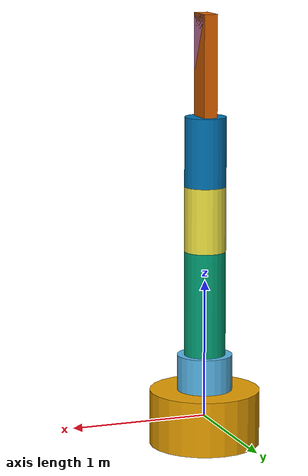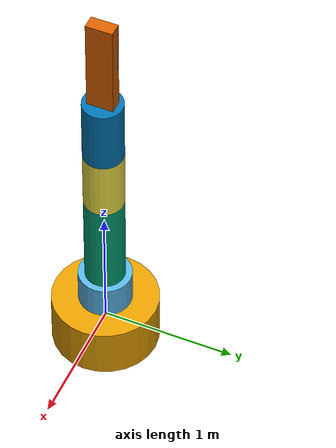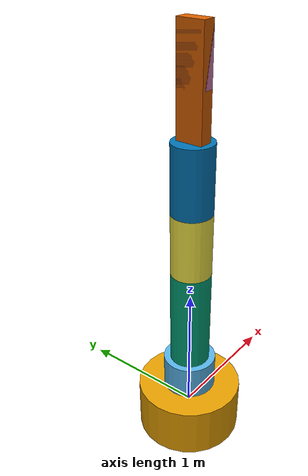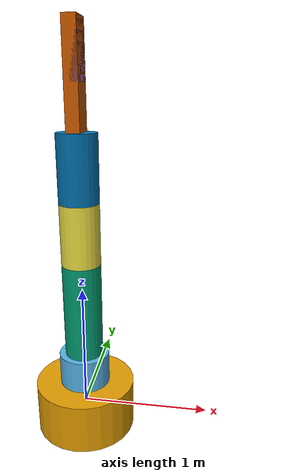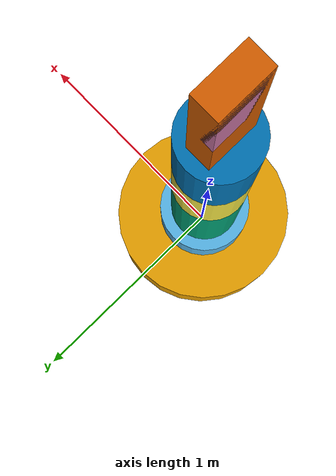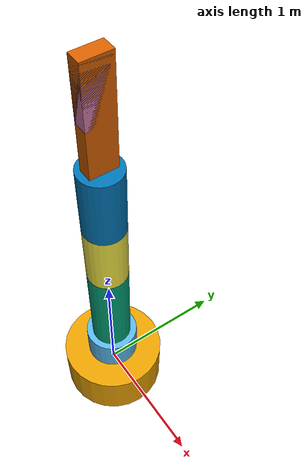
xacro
<?xml version="1.0" ?>
<!--building robot arm based on tutorial of "the construct"-->
<robot name="arm" xmlns:xacro="http://www.ros.org/wiki/xacro">
    <!-- BGN -include -->
    <xacro:include filename="$(find arm_description)/urdf/template_links_joints.xacro"/>
    <!-- END -include -->

    <!-- BGN - Robot description -->
    <xacro:link_m_cylinder name="link_base"
        origin_rpy="0 0 0" origin_xyz="0 0 0"
        radius="0.4" length="0.4"
        mass="1000" ixx="1" ixy="0" ixz="0"
        iyy="1" iyz="0"
        izz="1"/>

    <xacro:joint_m name="joint_base_01" type="revolute"
        axis_xyz="0 0 1" origin_rpy="0 0 0" origin_xyz="0 0 0.2"
        parent="link_base" child="link_01"
        limit_force="300" limit_pos_lower="-3.14" limit_pos_upper="3.14" limit_velocity="1"/>

    <xacro:link_m_cylinder name="link_01"
        origin_rpy="0 0 0" origin_xyz="0 0 0.13"
        radius="0.2" length="0.26"
        mass="0.01" ixx="0.0" ixy="0" ixz="0"
        iyy="0.0" iyz="0"
        izz="0.0"/>

    <xacro:joint_m name="joint_01_02" type="revolute"
        axis_xyz="0 1 0" origin_rpy="0 0 0" origin_xyz="0 0 0.26"
        parent="link_01" child="link_02"
        limit_force="300" limit_pos_lower="-3.14" limit_pos_upper="3.14" limit_velocity="1"/>

    <xacro:link_m_cylinder name="link_02"
        origin_rpy="0 0 0" origin_xyz="0 0 0.38"
        radius="0.15" length="0.76"
        mass="0.01" ixx="0" ixy="0" ixz="0"
        iyy="0" iyz="0"
        izz="0"/>

    <xacro:joint_m name="joint_02_03" type="revolute"
        axis_xyz="0 1 0" origin_rpy="0 0 0" origin_xyz="0 0 0.76"
        parent="link_02" child="link_03"
        limit_force="300" limit_pos_lower="-3.14" limit_pos_upper="3.14" limit_velocity="1"/>

    <xacro:link_m_cylinder name="link_03"
        origin_rpy="0 0 0" origin_xyz="0 0 0.235"
        radius="0.15" length="0.47"
        mass="0.01" ixx="0" ixy="0" ixz="0"
        iyy="0" iyz="0"
        izz="0"/>

    <xacro:joint_m name="joint_03_04" type="revolute"
        axis_xyz="0 1 0" origin_rpy="0 0 0" origin_xyz="0 0 0.47"
        parent="link_03" child="link_04"
        limit_force="300" limit_pos_lower="-3.14" limit_pos_upper="3.14" limit_velocity="1"/>

    <xacro:link_m_cylinder name="link_04"
        origin_rpy="0 0 0" origin_xyz="0 0 0.25"
        radius="0.15" length="0.5"
        mass="0.01" ixx="0" ixy="0" ixz="0"
        iyy="0" iyz="0"
        izz="0"/>

    <xacro:joint_m name="joint_04_05" type="revolute"
        axis_xyz="0 0 1" origin_rpy="0 0 0" origin_xyz="0 0 0.5"
        parent="link_04" child="link_05"
        limit_force="300" limit_pos_lower="-3.14" limit_pos_upper="3.14" limit_velocity="1"/>

    <xacro:link_m_box name="link_05"
        origin_rpy="0 0 0" origin_xyz="0 0 0.365"
        size="0.1 0.2 0.73"
        mass="0.01" ixx="0.0" ixy="0" ixz="0"
        iyy="0" iyz="0"
        izz="0"/>

    <xacro:joint_m name="joint_05_06" type="revolute"
        axis_xyz="0 1 0" origin_rpy="0 0 0" origin_xyz="0 0 0.33"
        parent="link_05" child="link_06_finger"
        limit_force="300" limit_pos_lower="-3.14" limit_pos_upper="3.14" limit_velocity="1"/>

    <xacro:link_m_box name="link_06_finger"
        origin_rpy="0 0 0" origin_xyz="0 0 0.2"
        size="0.1 0.2 0.4"
        mass="0.01" ixx="0." ixy="0" ixz="0"
        iyy="0" iyz="0"
        izz="0"/>

    <!-- END - Robot description -->

    <!-- BGN - controller description-->
    <gazebo>
        <plugin name="gazebo_ros_control" filename="libgazebo_ros_control.so">
        </plugin>
    </gazebo>
    <!-- END - controller description-->
</robot>

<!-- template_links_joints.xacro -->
<robot xmlns:xacro="http://www.ros.org/wiki/xacro">
    <xacro:macro name="link_m_cylinder" params="name origin_xyz origin_rpy radius length mass ixx ixy ixz iyy iyz izz">
        <link name="${name}">
            <inertial>
                <mass value="${mass}"/>
                <origin rpy="${origin_rpy}" xyz="${origin_xyz}"/>
                <inertia ixx="${ixx}" ixy="${ixy}" ixz="${ixz}" iyy="${iyy}" iyz="${iyz}" izz="${izz}"/>
            </inertial>
            <collision>
                <origin rpy="${origin_rpy}" xyz="${origin_xyz}"/>
                <geometry>
                    <cylinder radius="${radius}" length="${length}"/>
                </geometry>
            </collision>
            <visual>
                <origin rpy="${origin_rpy}" xyz="${origin_xyz}" />
                <geometry>
                    <cylinder radius="${radius}" length="${length}"/>
                </geometry>
            </visual>
        </link>
    </xacro:macro>

    <xacro:macro name="link_m_box" params="name origin_rpy origin_xyz size mass ixx ixy ixz iyy iyz izz">
        <link name="${name}">
            <inertial>
                <mass value="${mass}"/>
                <origin rpy="${origin_rpy}" xyz="${origin_xyz}"/>
                <inertia ixx="${ixx}" ixy="${ixy}" ixz="${ixz}" iyy="${iyy}" iyz="${iyz}" izz="${izz}"/>
            </inertial>
            <collision>
                <origin rpy="${origin_rpy}" xyz="${origin_xyz}"/>
                <geometry>
                    <box size="${size}"/>
                </geometry>
            </collision>
            <visual>
                <origin rpy="${origin_rpy}" xyz="${origin_xyz}" />
                <geometry>
                    <box size="${size}"/>
                </geometry>
            </visual>
        </link>
    </xacro:macro>

    <xacro:macro name="joint_m" params="name type axis_xyz origin_rpy origin_xyz parent child limit_force limit_pos_lower limit_pos_upper limit_velocity">
        <joint name="${name}" type = "${type}">
            <axis xyz="${axis_xyz}" />
            <limit effort="${limit_force}" lower ="${limit_pos_lower}" upper="${limit_pos_upper}" velocity="${limit_velocity}"/>
            <origin rpy="${origin_rpy}" xyz="${origin_xyz}" />
            <parent link="${parent}"/>
            <child link="${child}" />
        </joint>
        <transmission name="trans_${name}">
            <type>transmission_interface/SimpleTransmission</type>
            <joint name="${name}">
                <hardwareInterface>hardware_interface/EffortJointInterface</hardwareInterface>
            </joint>
            <actuator name="motor_${name}">
                <hardwareInterface>hardware_interface/EffortJointInterface</hardwareInterface>
                <mechanicalReduction>1</mechanicalReduction>
            </actuator>
        </transmission>
    </xacro:macro>
</robot>
